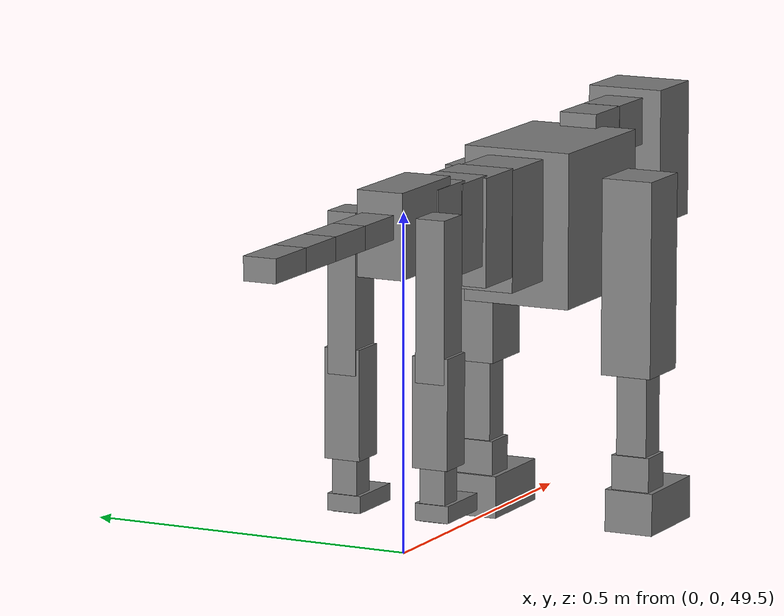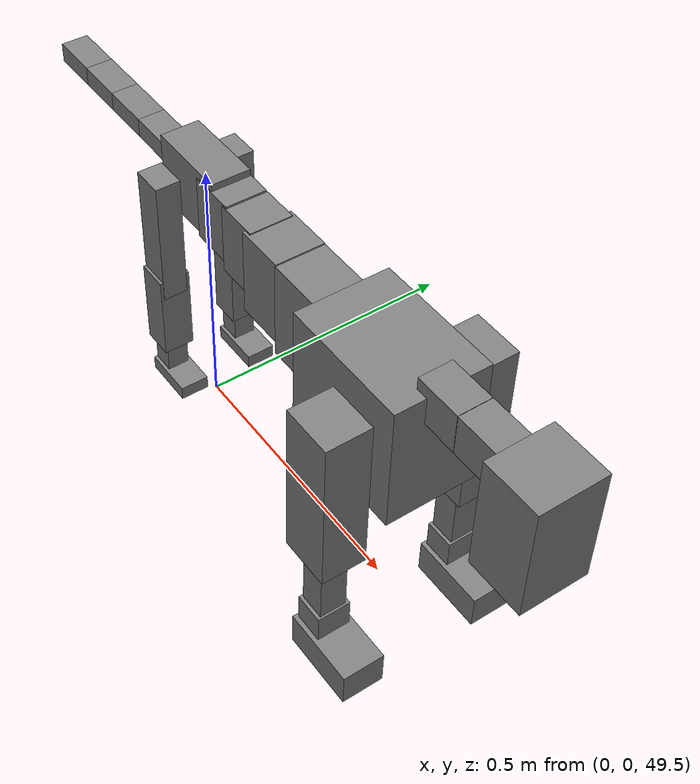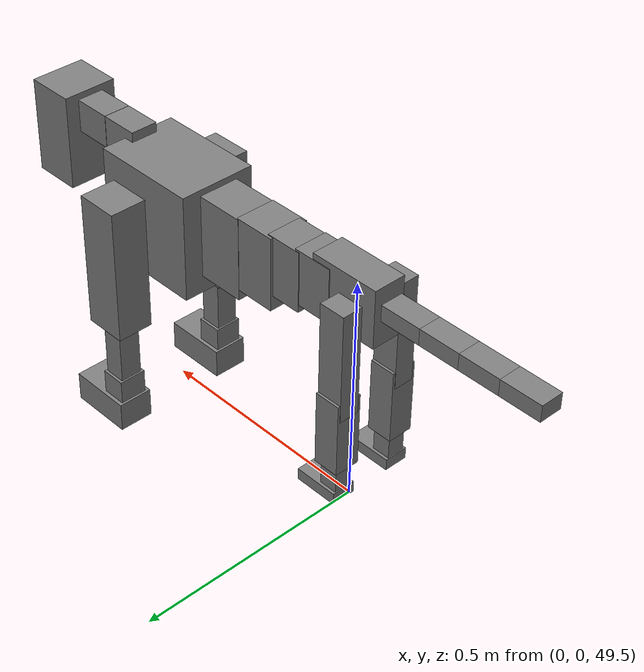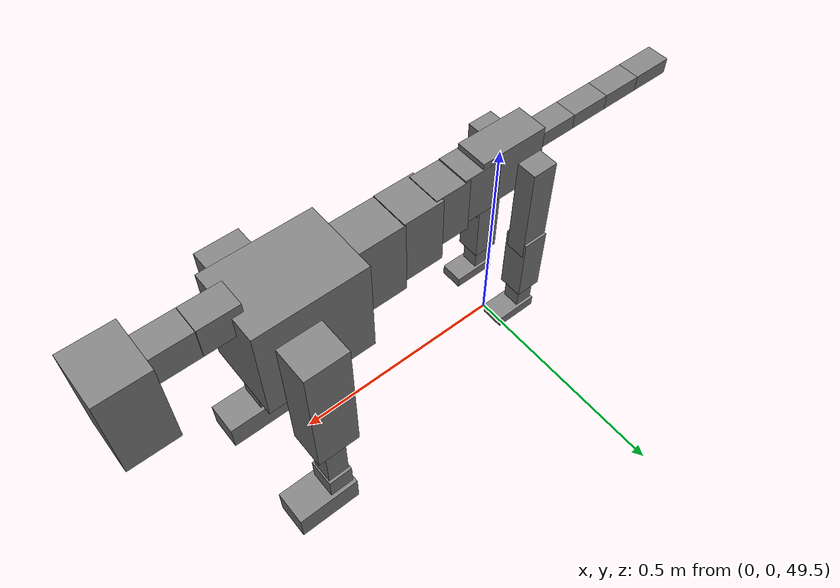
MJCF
<mujoco model="dog">

    <default>
        <joint armature="0.02" stiffness="1" damping="0.2" limited="true"/>
        <geom condim="3" friction="1 0.05 0.05" margin="0.01"/>
        <motor ctrllimited="true" ctrlrange="-1.0 1.0" forcelimited="true" gear="50"/>
    </default>

    <compiler inertiafromgeom="true" angle="radian"/>

    <option timestep="0.016" iterations="50" tolerance="1e-10" solver="Newton" jacobian="dense" cone="pyramidal"/>

    <size nconmax="20000" njmax="60000" nstack="5000000"/>
    <visual>
        <map force="0.1" zfar="30"/>
        <rgba haze="0.15 0.25 0.35 1"/>
        <quality shadowsize="2048"/>
        <global offwidth="800" offheight="800"/>
    </visual>

    <asset>
        <texture type="skybox" builtin="gradient" rgb1="0.3 0.5 0.7" rgb2="0 0 0" width="512" height="512"/>
        <texture name="texplane" type="2d" builtin="checker" rgb1=".2 .3 .4" rgb2=".1 0.15 0.2" width="512" height="512"
                 mark="cross" markrgb=".8 .8 .8"/>
        <texture name="texgeom" type="cube" builtin="flat" mark="cross" width="127" height="1278" rgb1="0.8 0.6 0.4"
                 rgb2="0.8 0.6 0.4" markrgb="1 1 1" random="0.01"/>

        <material name="matplane" reflectance="0.3" texture="texplane" texrepeat="1 1" texuniform="true"/>
        <material name="matgeom" texture="texgeom" texuniform="true" rgba="0.8 0.6 .4 1"/>
    </asset>

    <worldbody>
        <geom name="floor" pos="0 0 0" size="0 0 .25" type="plane" material="matplane" condim="3"/>

        <light directional="false" diffuse=".2 .2 .2" specular="0 0 0" pos="0 0 5" dir="0 0 -1" castshadow="false"/>
        <light mode="targetbodycom" target="torso" directional="false" diffuse=".8 .8 .8" specular="0.3 0.3 0.3"
               pos="0 0 4.0" dir="0 0 -1"/>

        <body name="root" pos="0 0 50">
            <freejoint name="root_1"/>
            <geom type="box" pos="0 0 -0.02" size="0.0774  0.0358  0.063" density="2030"/>

            <body name="spine1" pos="0.054 0 0">
                <joint name="spine1_y" axis="0 1 0" range="0 0.7" limited="true"/>
                <geom type="box" pos="0.02375 0 -0.03" size="0.04375  0.0375  0.05985" density="2030"/>

                <body name="spine2" pos="0.0612 0 0">
                    <joint name="spine2_y" axis="0 1 0" range="-0.15 0.15" limited="true"/>
                    <geom type="box" pos="0.03555  0  -0.04" size="0.04055  0.039  0.06615" density="2030"/>

                    <body name="spine3" pos="0.0730 0 0">
                        <joint name="spine3_y" axis="0 1 0" range="-0.15 0.15" limited="true"/>
                        <geom type="box" pos="0.03555  0  -0.057" size="0.04555  0.0445  0.081" density="2030"/>

                        <body name="spine4" pos="0.0780 0 0">
                            <joint name="spine4_y" axis="0 1 0" range="-0.15 0.15" limited="true"/>
                            <geom type="box" pos="0.05265  0  -0.07" size="0.05265  0.045  0.09135" density="2030"/>

                            <body name="torso" pos="0.1082 0 0">
                                <joint name="torso_y" axis="0 1 0" range="-0.15 0.15" limited="true"/>
                                <geom type="box" pos="0.11925  0  -0.085" size="0.11925  0.085  0.11745"
                                      density="2030"/>

                                <body name="neck1" pos="0.2160  0   0.0180">
                                    <joint name="neck1_y" axis="0 1 0" range="-1.2  -1" limited="true"/>
                                    <geom type="box" pos="0.0423  0  0" size="0.0423  0.03  0.036" density="2325"/>

                                    <body name="neck2" pos="0.0853  0  0">
                                        <joint name="neck2_y" axis="0 1 0" range="0.1  0" limited="true"/>
                                        <geom type="box" pos="0.0423  0  0" size="0.0423  0.03  0.036" density="2325"/>

                                        <body name="head" pos="0.0853  0  0">
                                            <joint name="head_y" axis="0 1 0" range="-0.3  -0.2" limited="true"/>
                                            <geom type="box" pos="0.0531  0  -0.055" size="0.0531  0.06  0.1044"
                                                  density="4030"/>

                                        </body>
                                    </body>
                                </body>

                                <body name="front_shoulder" pos="0.156  0   -0.0480">
                                    <joint name="front_shoulder_y" axis="0 1 0" range="-1 1.5" limited="true"/>
                                    <geom type="box" pos="0 0.13 -0.1229" size="0.0470  0.0402  0.1495" density="1158"/>
                                    <geom type="box" pos="0 -0.13 -0.1229" size="0.0470  0.0402  0.1495"
                                          density="1158"/>

                                    <body name="front_elbow" pos="0  0  -0.2457">
                                        <joint name="front_elbow_y" axis="0 1 0" range="-2 0" limited="true"/>
                                        <geom type="box" pos="0 0.13 -0.0828" size="0.0238  0.0243  0.0828"
                                              density="1081"/>
                                        <geom type="box" pos="0 -0.13 -0.0828" size="0.0238  0.0243  0.0828"
                                              density="1081"/>

                                        <body name="front_wrist" pos="0  0  -0.1656">
                                            <joint name="front_wrist_y" axis="0 1 0" range="-0.2 0" limited="true"/>
                                            <geom type="box" pos="0 0.13 -0.0274" size="0.0273  0.0303  0.0406"
                                                  density="1664"/>
                                            <geom type="box" pos="0 -0.13 -0.0274" size="0.0273  0.0303  0.0406"
                                                  density="1664"/>

                                            <body name="front_finger_end" pos="0  0  -0.0548">
                                                <joint name="front_finger_y" axis="0 1 0" range="-0.4 1"
                                                       limited="true"/>
                                                <geom type="box" pos="0.0386  0.13  -0.0175"
                                                      size="0.0707  0.0386  0.0325" density="1515"/>
                                                <geom type="box" pos="0.0386  -0.13  -0.0175"
                                                      size="0.0707  0.0386  0.0325" density="1515"/>

                                            </body>

                                        </body>
                                    </body>
                                </body>

                            </body>
                        </body>
                    </body>
                </body>
            </body>

            <body name="back_hip" pos="-0.03 0 -0.018">
                <joint name="back_hip_y" axis="0 1 0" range="-1.5 0.3" limited="true"/>
                <geom type="box" pos="0 0.07 -0.0958" size="0.0287  0.0225  0.1186" density="1154"/>
                <geom type="box" pos="0 -0.07 -0.0958" size="0.0287  0.0225  0.1186" density="1154"/>

                <body name="back_knee" pos="0  0  -0.1916">
                    <joint name="back_knee_y" axis="0 1 0" range="0 2.8" limited="true"/>
                    <geom type="box" pos="0 0.07 -0.0659" size="0.0282  0.0278  0.0814" density="1227"/>
                    <geom type="box" pos="0 -0.07 -0.0659" size="0.0282  0.0278  0.0814" density="1227"/>

                    <body name="back_ankle" pos="0  0  -0.1317">
                        <joint name="back_ankle_y" axis="0 1 0" range="-2.2 0" limited="true"/>
                        <geom type="box" pos="0 0.07 -0.0416" size="0.0198  0.0198  0.0529" density="1284"/>
                        <geom type="box" pos="0 -0.07 -0.0416" size="0.0198  0.0198  0.0529" density="1284"/>

                        <body name="back_toe_end" pos="0  0  -0.0833">
                            <joint name="back_toe_y" axis="0 1 0" range="-0.4 1" limited="true"/>
                            <geom type="box" pos="0.0262  0.07  0.0024" size="0.0480  0.0262  0.0126" density="1515"/>
                            <geom type="box" pos="0.0262  -0.07  0.0024" size="0.0480  0.0262  0.0126" density="1515"/>

                        </body>
                    </body>
                </body>
            </body>

            <body name="tail1" pos="-0.074 0 -0.006">
                <joint name="tail1_y" axis="0 1 0" range="-0.2 0.2" limited="true"/>
                <geom type="box" pos="-0.0536  0  0" size="0.045  0.025  0.0175" density="1587"/>

                <body name="tail2" pos="-0.09 0 0">
                    <joint name="tail2_y" axis="0 1 0" range="-0.2 0.2" limited="true"/>
                    <geom type="box" pos="-0.0536  0  0" size="0.045  0.025  0.0175" density="1587"/>

                    <body name="tail3" pos="-0.09 0 0">
                        <joint name="tail3_y" axis="0 1 0" range="-0.2 0.2" limited="true"/>
                        <geom type="box" pos="-0.0536  0  0" size="0.045  0.025  0.0175" density="1587"/>

                        <body name="tail4" pos="-0.09 0 0">
                            <joint name="tail4_y" axis="0 1 0" range="-0.2 0.2" limited="true"/>
                            <geom type="box" pos="-0.0536  0  0" size="0.045  0.025  0.0175" density="1587"/>

                        </body>
                    </body>
                </body>
            </body>
        </body>
    </worldbody>

    <actuator>
        <motor joint="spine1_y" forcerange="-150 150     "/>
        <motor joint="spine2_y" forcerange="-150 150     "/>
        <motor joint="spine3_y" forcerange="-150 150     "/>
        <motor joint="spine4_y" forcerange="-150 150     "/>
        <motor joint="torso_y" forcerange="-150 150     "/>
        <motor joint="neck1_y" forcerange="-100 100       "/>
        <motor joint="neck2_y" forcerange="-100 100       "/>
        <motor joint="head_y" forcerange="-150 150       "/>
        <motor joint="front_shoulder_y" forcerange="-184.55 183.22"/>
        <motor joint="front_elbow_y" forcerange="-170.15 106.91"/>
        <motor joint="front_wrist_y" forcerange="-148.28 94.23"/>
        <motor joint="front_finger_y" forcerange="-72.09 93.54"/>
        <motor joint="back_hip_y" forcerange="-278.10 221.85"/>
        <motor joint="back_knee_y" forcerange="-369.22 235.68"/>
        <motor joint="back_angle_y" forcerange="-78.29 139.26"/>
        <motor joint="back_toe_y" forcerange="-80.24 49.41"/>
        <motor joint="tail1_y" forcerange="-50 50     "/>
        <motor joint="tail2_y" forcerange="-50 50     "/>
        <motor joint="tail3_y" forcerange="-50 50     "/>
        <motor joint="tail4_y" forcerange="-50 50     "/>
    </actuator>
</mujoco>
